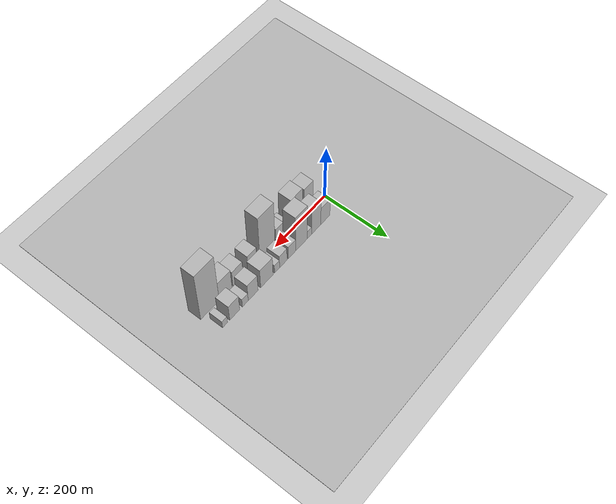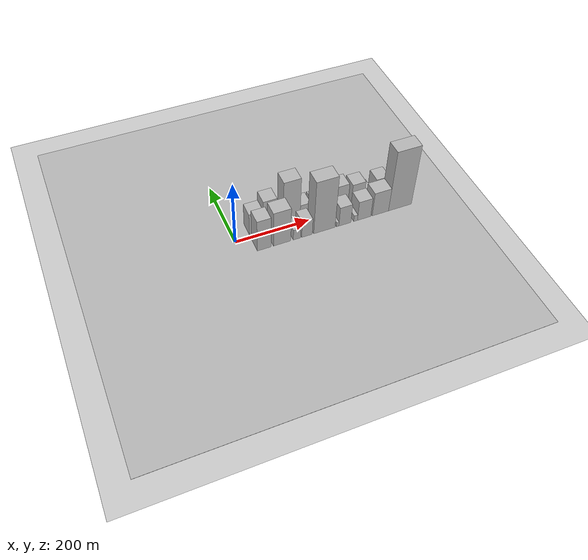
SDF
<?xml version="1.0" encoding="utf-8"?>

<sdf version="1.6">

   <world name="default">

      <gui fullscreen="0">

         <camera name="user_camera">

            <pose>-15 0 4.57585 0 0 0</pose>

            <view_controller>orbit</view_controller>

         </camera>

      </gui>

      <scene>

         <sky>

           <clouds>

             <speed>12</speed>

           </clouds>

         </sky>

         <ambient>0.4 0.4 0.4 1</ambient>

         <background>0.7 0.7 0.7 1</background>

         <shadows>1</shadows>

      </scene>

      <gravity>0 0 -9.8066</gravity>

      <magnetic_field>6e-06 2.3e-05 -4.2e-05</magnetic_field>

      <physics default="0" name="default_physics" type="ode">

         <ode>

            <solver>

               <type>quick</type>

               <iters>10</iters>

               <sor>1.0</sor>

               <use_dynamic_moi_rescaling>0</use_dynamic_moi_rescaling>

            </solver>

            <constraints>

               <cfm>0</cfm>

               <erp>0.2</erp>

               <contact_max_correcting_vel>100</contact_max_correcting_vel>

               <contact_surface_layer>0.001</contact_surface_layer>

            </constraints>

         </ode>

         <max_step_size>0.004</max_step_size>

         <real_time_factor>1</real_time_factor>

         <real_time_update_rate>250</real_time_update_rate>

      </physics>

      <light name="sun" type="directional">

         <cast_shadows>1</cast_shadows>

         <pose>0 0 10 0 0 0</pose>

         <diffuse>0.8 0.8 0.8 1</diffuse>

         <specular>0.2 0.2 0.2 1</specular>

         <attenuation>

            <range>1000</range>

            <constant>0.9</constant>

            <linear>0.01</linear>

            <quadratic>0.001</quadratic>

         </attenuation>

         <direction>-0.5 0.1 -0.9</direction>

      </light>

      <include>

         <name>ground_plane_1</name>

         <uri>model://HANNAS_ground_plane</uri>

         <pose>0 0 0  0 0 0</pose>

      </include>

      <include>

         <name>ground_plane_2</name>

         <uri>model://HANNAS_ground_plane</uri>

         <pose>100 0 0  0 0 0</pose>

      </include>

      <model name="building_1">

         <static>1</static>

         <pose frame="">58.9112 27.5000 0 0.000000 0.000000 1.570796</pose>

         <link name="link">

            <pose frame="">0 0 37.50 0 0 0</pose>

            <collision name="collision">

               <geometry>

                  <box>

                     <size>40.0000 37.8224 75.0000</size>

                  </box>

               </geometry>

               <max_contacts>10</max_contacts>

               <surface>

                  <contact>

                     <ode/>

                  </contact>

                  <bounce/>

                  <friction>

                     <torsional>

                        <ode/>

                     </torsional>

                     <ode/>

                  </friction>

               </surface>

            </collision>

            <visual name="visual">

               <cast_shadows>0</cast_shadows>

               <geometry>

                  <box>

                     <size>40.0000 37.8224 75.0000</size>

                  </box>

               </geometry>

               <material>

                  <script>

                     <uri>model://HANNAS_wall/materials/scripts</uri>

                     <uri>model://HANNAS_wall/materials/textures</uri>

                     <name>vrc/HANNAS_wall</name>

                  </script>

               </material>

            </visual>

            <self_collide>0</self_collide>

            <enable_wind>0</enable_wind>

            <kinematic>0</kinematic>

         </link>

      </model>

      <model name="building_2">

         <static>1</static>

         <pose frame="">96.0253 27.5000 0 0.000000 0.000000 1.570796</pose>

         <link name="link">

            <pose frame="">0 0 52.50 0 0 0</pose>

            <collision name="collision">

               <geometry>

                  <box>

                     <size>40.0000 36.4057 105.0000</size>

                  </box>

               </geometry>

               <max_contacts>10</max_contacts>

               <surface>

                  <contact>

                     <ode/>

                  </contact>

                  <bounce/>

                  <friction>

                     <torsional>

                        <ode/>

                     </torsional>

                     <ode/>

                  </friction>

               </surface>

            </collision>

            <visual name="visual">

               <cast_shadows>0</cast_shadows>

               <geometry>

                  <box>

                     <size>40.0000 36.4057 105.0000</size>

                  </box>

               </geometry>

               <material>

                  <script>

                     <uri>model://HANNAS_wall/materials/scripts</uri>

                     <uri>model://HANNAS_wall/materials/textures</uri>

                     <name>vrc/HANNAS_wall</name>

                  </script>

               </material>

            </visual>

            <self_collide>0</self_collide>

            <enable_wind>0</enable_wind>

            <kinematic>0</kinematic>

         </link>

      </model>

      <model name="building_3">

         <static>1</static>

         <pose frame="">122.9657 27.5000 0 0.000000 0.000000 1.570796</pose>

         <link name="link">

            <pose frame="">0 0 16.50 0 0 0</pose>

            <collision name="collision">

               <geometry>

                  <box>

                     <size>40.0000 17.4751 33.0000</size>

                  </box>

               </geometry>

               <max_contacts>10</max_contacts>

               <surface>

                  <contact>

                     <ode/>

                  </contact>

                  <bounce/>

                  <friction>

                     <torsional>

                        <ode/>

                     </torsional>

                     <ode/>

                  </friction>

               </surface>

            </collision>

            <visual name="visual">

               <cast_shadows>0</cast_shadows>

               <geometry>

                  <box>

                     <size>40.0000 17.4751 33.0000</size>

                  </box>

               </geometry>

               <material>

                  <script>

                     <uri>model://HANNAS_wall/materials/scripts</uri>

                     <uri>model://HANNAS_wall/materials/textures</uri>

                     <name>vrc/HANNAS_wall</name>

                  </script>

               </material>

            </visual>

            <self_collide>0</self_collide>

            <enable_wind>0</enable_wind>

            <kinematic>0</kinematic>

         </link>

      </model>

      <model name="building_4">

         <static>1</static>

         <pose frame="">154.6635 27.5000 0 0.000000 0.000000 1.570796</pose>

         <link name="link">

            <pose frame="">0 0 75.00 0 0 0</pose>

            <collision name="collision">

               <geometry>

                  <box>

                     <size>40.0000 45.9206 150.0000</size>

                  </box>

               </geometry>

               <max_contacts>10</max_contacts>

               <surface>

                  <contact>

                     <ode/>

                  </contact>

                  <bounce/>

                  <friction>

                     <torsional>

                        <ode/>

                     </torsional>

                     <ode/>

                  </friction>

               </surface>

            </collision>

            <visual name="visual">

               <cast_shadows>0</cast_shadows>

               <geometry>

                  <box>

                     <size>40.0000 45.9206 150.0000</size>

                  </box>

               </geometry>

               <material>

                  <script>

                     <uri>model://HANNAS_wall/materials/scripts</uri>

                     <uri>model://HANNAS_wall/materials/textures</uri>

                     <name>vrc/HANNAS_wall</name>

                  </script>

               </material>

            </visual>

            <self_collide>0</self_collide>

            <enable_wind>0</enable_wind>

            <kinematic>0</kinematic>

         </link>

      </model>

      <model name="building_5">

         <static>1</static>

         <pose frame="">191.8760 27.5000 0 0.000000 0.000000 1.570796</pose>

         <link name="link">

            <pose frame="">0 0 27.00 0 0 0</pose>

            <collision name="collision">

               <geometry>

                  <box>

                     <size>40.0000 28.5044 54.0000</size>

                  </box>

               </geometry>

               <max_contacts>10</max_contacts>

               <surface>

                  <contact>

                     <ode/>

                  </contact>

                  <bounce/>

                  <friction>

                     <torsional>

                        <ode/>

                     </torsional>

                     <ode/>

                  </friction>

               </surface>

            </collision>

            <visual name="visual">

               <cast_shadows>0</cast_shadows>

               <geometry>

                  <box>

                     <size>40.0000 28.5044 54.0000</size>

                  </box>

               </geometry>

               <material>

                  <script>

                     <uri>model://HANNAS_wall/materials/scripts</uri>

                     <uri>model://HANNAS_wall/materials/textures</uri>

                     <name>vrc/HANNAS_wall</name>

                  </script>

               </material>

            </visual>

            <self_collide>0</self_collide>

            <enable_wind>0</enable_wind>

            <kinematic>0</kinematic>

         </link>

      </model>

      <model name="building_6">

         <static>1</static>

         <pose frame="">225.6103 27.5000 0 0.000000 0.000000 1.570796</pose>

         <link name="link">

            <pose frame="">0 0 27.00 0 0 0</pose>

            <collision name="collision">

               <geometry>

                  <box>

                     <size>40.0000 28.9641 54.0000</size>

                  </box>

               </geometry>

               <max_contacts>10</max_contacts>

               <surface>

                  <contact>

                     <ode/>

                  </contact>

                  <bounce/>

                  <friction>

                     <torsional>

                        <ode/>

                     </torsional>

                     <ode/>

                  </friction>

               </surface>

            </collision>

            <visual name="visual">

               <cast_shadows>0</cast_shadows>

               <geometry>

                  <box>

                     <size>40.0000 28.9641 54.0000</size>

                  </box>

               </geometry>

               <material>

                  <script>

                     <uri>model://HANNAS_wall/materials/scripts</uri>

                     <uri>model://HANNAS_wall/materials/textures</uri>

                     <name>vrc/HANNAS_wall</name>

                  </script>

               </material>

            </visual>

            <self_collide>0</self_collide>

            <enable_wind>0</enable_wind>

            <kinematic>0</kinematic>

         </link>

      </model>

      <model name="building_7">

         <static>1</static>

         <pose frame="">249.6914 27.5000 0 0.000000 0.000000 1.570796</pose>

         <link name="link">

            <pose frame="">0 0 18.00 0 0 0</pose>

            <collision name="collision">

               <geometry>

                  <box>

                     <size>40.0000 19.1980 36.0000</size>

                  </box>

               </geometry>

               <max_contacts>10</max_contacts>

               <surface>

                  <contact>

                     <ode/>

                  </contact>

                  <bounce/>

                  <friction>

                     <torsional>

                        <ode/>

                     </torsional>

                     <ode/>

                  </friction>

               </surface>

            </collision>

            <visual name="visual">

               <cast_shadows>0</cast_shadows>

               <geometry>

                  <box>

                     <size>40.0000 19.1980 36.0000</size>

                  </box>

               </geometry>

               <material>

                  <script>

                     <uri>model://HANNAS_wall/materials/scripts</uri>

                     <uri>model://HANNAS_wall/materials/textures</uri>

                     <name>vrc/HANNAS_wall</name>

                  </script>

               </material>

            </visual>

            <self_collide>0</self_collide>

            <enable_wind>0</enable_wind>

            <kinematic>0</kinematic>

         </link>

      </model>

      <model name="building_8">

         <static>1</static>

         <pose frame="">288.7685 27.5000 0 0.000000 0.000000 1.570796</pose>

         <link name="link">

            <pose frame="">0 0 40.50 0 0 0</pose>

            <collision name="collision">

               <geometry>

                  <box>

                     <size>40.0000 46.9563 81.0000</size>

                  </box>

               </geometry>

               <max_contacts>10</max_contacts>

               <surface>

                  <contact>

                     <ode/>

                  </contact>

                  <bounce/>

                  <friction>

                     <torsional>

                        <ode/>

                     </torsional>

                     <ode/>

                  </friction>

               </surface>

            </collision>

            <visual name="visual">

               <cast_shadows>0</cast_shadows>

               <geometry>

                  <box>

                     <size>40.0000 46.9563 81.0000</size>

                  </box>

               </geometry>

               <material>

                  <script>

                     <uri>model://HANNAS_wall/materials/scripts</uri>

                     <uri>model://HANNAS_wall/materials/textures</uri>

                     <name>vrc/HANNAS_wall</name>

                  </script>

               </material>

            </visual>

            <self_collide>0</self_collide>

            <enable_wind>0</enable_wind>

            <kinematic>0</kinematic>

         </link>

      </model>

      <model name="building_9">

         <static>1</static>

         <pose frame="">340.5489 27.5000 0 0.000000 0.000000 1.570796</pose>

         <link name="link">

            <pose frame="">0 0 36.00 0 0 0</pose>

            <collision name="collision">

               <geometry>

                  <box>

                     <size>40.0000 36.6044 72.0000</size>

                  </box>

               </geometry>

               <max_contacts>10</max_contacts>

               <surface>

                  <contact>

                     <ode/>

                  </contact>

                  <bounce/>

                  <friction>

                     <torsional>

                        <ode/>

                     </torsional>

                     <ode/>

                  </friction>

               </surface>

            </collision>

            <visual name="visual">

               <cast_shadows>0</cast_shadows>

               <geometry>

                  <box>

                     <size>40.0000 36.6044 72.0000</size>

                  </box>

               </geometry>

               <material>

                  <script>

                     <uri>model://HANNAS_wall/materials/scripts</uri>

                     <uri>model://HANNAS_wall/materials/textures</uri>

                     <name>vrc/HANNAS_wall</name>

                  </script>

               </material>

            </visual>

            <self_collide>0</self_collide>

            <enable_wind>0</enable_wind>

            <kinematic>0</kinematic>

         </link>

      </model>

      <model name="building_10">

         <static>1</static>

         <pose frame="">369.5838 27.5000 0 0.000000 0.000000 1.570796</pose>

         <link name="link">

            <pose frame="">0 0 18.00 0 0 0</pose>

            <collision name="collision">

               <geometry>

                  <box>

                     <size>40.0000 21.4655 36.0000</size>

                  </box>

               </geometry>

               <max_contacts>10</max_contacts>

               <surface>

                  <contact>

                     <ode/>

                  </contact>

                  <bounce/>

                  <friction>

                     <torsional>

                        <ode/>

                     </torsional>

                     <ode/>

                  </friction>

               </surface>

            </collision>

            <visual name="visual">

               <cast_shadows>0</cast_shadows>

               <geometry>

                  <box>

                     <size>40.0000 21.4655 36.0000</size>

                  </box>

               </geometry>

               <material>

                  <script>

                     <uri>model://HANNAS_wall/materials/scripts</uri>

                     <uri>model://HANNAS_wall/materials/textures</uri>

                     <name>vrc/HANNAS_wall</name>

                  </script>

               </material>

            </visual>

            <self_collide>0</self_collide>

            <enable_wind>0</enable_wind>

            <kinematic>0</kinematic>

         </link>

      </model>

      <model name="building_11">

         <static>1</static>

         <pose frame="">408.5674 27.5000 0 0.000000 0.000000 1.570796</pose>

         <link name="link">

            <pose frame="">0 0 33.00 0 0 0</pose>

            <collision name="collision">

               <geometry>

                  <box>

                     <size>40.0000 36.5016 66.0000</size>

                  </box>

               </geometry>

               <max_contacts>10</max_contacts>

               <surface>

                  <contact>

                     <ode/>

                  </contact>

                  <bounce/>

                  <friction>

                     <torsional>

                        <ode/>

                     </torsional>

                     <ode/>

                  </friction>

               </surface>

            </collision>

            <visual name="visual">

               <cast_shadows>0</cast_shadows>

               <geometry>

                  <box>

                     <size>40.0000 36.5016 66.0000</size>

                  </box>

               </geometry>

               <material>

                  <script>

                     <uri>model://HANNAS_wall/materials/scripts</uri>

                     <uri>model://HANNAS_wall/materials/textures</uri>

                     <name>vrc/HANNAS_wall</name>

                  </script>

               </material>

            </visual>

            <self_collide>0</self_collide>

            <enable_wind>0</enable_wind>

            <kinematic>0</kinematic>

         </link>

      </model>

      <model name="building_12">

         <static>1</static>

         <pose frame="">443.7434 27.5000 0 0.000000 0.000000 1.570796</pose>

         <link name="link">

            <pose frame="">0 0 15.00 0 0 0</pose>

            <collision name="collision">

               <geometry>

                  <box>

                     <size>40.0000 17.8504 30.0000</size>

                  </box>

               </geometry>

               <max_contacts>10</max_contacts>

               <surface>

                  <contact>

                     <ode/>

                  </contact>

                  <bounce/>

                  <friction>

                     <torsional>

                        <ode/>

                     </torsional>

                     <ode/>

                  </friction>

               </surface>

            </collision>

            <visual name="visual">

               <cast_shadows>0</cast_shadows>

               <geometry>

                  <box>

                     <size>40.0000 17.8504 30.0000</size>

                  </box>

               </geometry>

               <material>

                  <script>

                     <uri>model://HANNAS_wall/materials/scripts</uri>

                     <uri>model://HANNAS_wall/materials/textures</uri>

                     <name>vrc/HANNAS_wall</name>

                  </script>

               </material>

            </visual>

            <self_collide>0</self_collide>

            <enable_wind>0</enable_wind>

            <kinematic>0</kinematic>

         </link>

      </model>

      <model name="building_13">

         <static>1</static>

         <pose frame="">58.2662 -27.5000 0 0.000000 0.000000 1.570796</pose>

         <link name="link">

            <pose frame="">0 0 52.50 0 0 0</pose>

            <collision name="collision">

               <geometry>

                  <box>

                     <size>40.0000 36.5324 105.0000</size>

                  </box>

               </geometry>

               <max_contacts>10</max_contacts>

               <surface>

                  <contact>

                     <ode/>

                  </contact>

                  <bounce/>

                  <friction>

                     <torsional>

                        <ode/>

                     </torsional>

                     <ode/>

                  </friction>

               </surface>

            </collision>

            <visual name="visual">

               <cast_shadows>0</cast_shadows>

               <geometry>

                  <box>

                     <size>40.0000 36.5324 105.0000</size>

                  </box>

               </geometry>

               <material>

                  <script>

                     <uri>model://HANNAS_wall/materials/scripts</uri>

                     <uri>model://HANNAS_wall/materials/textures</uri>

                     <name>vrc/HANNAS_wall</name>

                  </script>

               </material>

            </visual>

            <self_collide>0</self_collide>

            <enable_wind>0</enable_wind>

            <kinematic>0</kinematic>

         </link>

      </model>

      <model name="building_14">

         <static>1</static>

         <pose frame="">105.6977 -27.5000 0 0.000000 0.000000 1.570796</pose>

         <link name="link">

            <pose frame="">0 0 58.50 0 0 0</pose>

            <collision name="collision">

               <geometry>

                  <box>

                     <size>40.0000 46.3305 117.0000</size>

                  </box>

               </geometry>

               <max_contacts>10</max_contacts>

               <surface>

                  <contact>

                     <ode/>

                  </contact>

                  <bounce/>

                  <friction>

                     <torsional>

                        <ode/>

                     </torsional>

                     <ode/>

                  </friction>

               </surface>

            </collision>

            <visual name="visual">

               <cast_shadows>0</cast_shadows>

               <geometry>

                  <box>

                     <size>40.0000 46.3305 117.0000</size>

                  </box>

               </geometry>

               <material>

                  <script>

                     <uri>model://HANNAS_wall/materials/scripts</uri>

                     <uri>model://HANNAS_wall/materials/textures</uri>

                     <name>vrc/HANNAS_wall</name>

                  </script>

               </material>

            </visual>

            <self_collide>0</self_collide>

            <enable_wind>0</enable_wind>

            <kinematic>0</kinematic>

         </link>

      </model>

      <model name="building_15">

         <static>1</static>

         <pose frame="">145.7606 -27.5000 0 0.000000 0.000000 1.570796</pose>

         <link name="link">

            <pose frame="">0 0 18.00 0 0 0</pose>

            <collision name="collision">

               <geometry>

                  <box>

                     <size>40.0000 19.7955 36.0000</size>

                  </box>

               </geometry>

               <max_contacts>10</max_contacts>

               <surface>

                  <contact>

                     <ode/>

                  </contact>

                  <bounce/>

                  <friction>

                     <torsional>

                        <ode/>

                     </torsional>

                     <ode/>

                  </friction>

               </surface>

            </collision>

            <visual name="visual">

               <cast_shadows>0</cast_shadows>

               <geometry>

                  <box>

                     <size>40.0000 19.7955 36.0000</size>

                  </box>

               </geometry>

               <material>

                  <script>

                     <uri>model://HANNAS_wall/materials/scripts</uri>

                     <uri>model://HANNAS_wall/materials/textures</uri>

                     <name>vrc/HANNAS_wall</name>

                  </script>

               </material>

            </visual>

            <self_collide>0</self_collide>

            <enable_wind>0</enable_wind>

            <kinematic>0</kinematic>

         </link>

      </model>

      <model name="building_16">

         <static>1</static>

         <pose frame="">173.1249 -27.5000 0 0.000000 0.000000 1.570796</pose>

         <link name="link">

            <pose frame="">0 0 28.50 0 0 0</pose>

            <collision name="collision">

               <geometry>

                  <box>

                     <size>40.0000 28.9332 57.0000</size>

                  </box>

               </geometry>

               <max_contacts>10</max_contacts>

               <surface>

                  <contact>

                     <ode/>

                  </contact>

                  <bounce/>

                  <friction>

                     <torsional>

                        <ode/>

                     </torsional>

                     <ode/>

                  </friction>

               </surface>

            </collision>

            <visual name="visual">

               <cast_shadows>0</cast_shadows>

               <geometry>

                  <box>

                     <size>40.0000 28.9332 57.0000</size>

                  </box>

               </geometry>

               <material>

                  <script>

                     <uri>model://HANNAS_wall/materials/scripts</uri>

                     <uri>model://HANNAS_wall/materials/textures</uri>

                     <name>vrc/HANNAS_wall</name>

                  </script>

               </material>

            </visual>

            <self_collide>0</self_collide>

            <enable_wind>0</enable_wind>

            <kinematic>0</kinematic>

         </link>

      </model>

      <model name="building_17">

         <static>1</static>

         <pose frame="">221.0845 -27.5000 0 0.000000 0.000000 1.570796</pose>

         <link name="link">

            <pose frame="">0 0 90.00 0 0 0</pose>

            <collision name="collision">

               <geometry>

                  <box>

                     <size>40.0000 58.9860 180.0000</size>

                  </box>

               </geometry>

               <max_contacts>10</max_contacts>

               <surface>

                  <contact>

                     <ode/>

                  </contact>

                  <bounce/>

                  <friction>

                     <torsional>

                        <ode/>

                     </torsional>

                     <ode/>

                  </friction>

               </surface>

            </collision>

            <visual name="visual">

               <cast_shadows>0</cast_shadows>

               <geometry>

                  <box>

                     <size>40.0000 58.9860 180.0000</size>

                  </box>

               </geometry>

               <material>

                  <script>

                     <uri>model://HANNAS_wall/materials/scripts</uri>

                     <uri>model://HANNAS_wall/materials/textures</uri>

                     <name>vrc/HANNAS_wall</name>

                  </script>

               </material>

            </visual>

            <self_collide>0</self_collide>

            <enable_wind>0</enable_wind>

            <kinematic>0</kinematic>

         </link>

      </model>

      <model name="building_18">

         <static>1</static>

         <pose frame="">257.8445 -27.5000 0 0.000000 0.000000 1.570796</pose>

         <link name="link">

            <pose frame="">0 0 7.50 0 0 0</pose>

            <collision name="collision">

               <geometry>

                  <box>

                     <size>40.0000 6.5340 15.0000</size>

                  </box>

               </geometry>

               <max_contacts>10</max_contacts>

               <surface>

                  <contact>

                     <ode/>

                  </contact>

                  <bounce/>

                  <friction>

                     <torsional>

                        <ode/>

                     </torsional>

                     <ode/>

                  </friction>

               </surface>

            </collision>

            <visual name="visual">

               <cast_shadows>0</cast_shadows>

               <geometry>

                  <box>

                     <size>40.0000 6.5340 15.0000</size>

                  </box>

               </geometry>

               <material>

                  <script>

                     <uri>model://HANNAS_wall/materials/scripts</uri>

                     <uri>model://HANNAS_wall/materials/textures</uri>

                     <name>vrc/HANNAS_wall</name>

                  </script>

               </material>

            </visual>

            <self_collide>0</self_collide>

            <enable_wind>0</enable_wind>

            <kinematic>0</kinematic>

         </link>

      </model>

      <model name="building_19">

         <static>1</static>

         <pose frame="">278.0468 -27.5000 0 0.000000 0.000000 1.570796</pose>

         <link name="link">

            <pose frame="">0 0 33.00 0 0 0</pose>

            <collision name="collision">

               <geometry>

                  <box>

                     <size>40.0000 33.8707 66.0000</size>

                  </box>

               </geometry>

               <max_contacts>10</max_contacts>

               <surface>

                  <contact>

                     <ode/>

                  </contact>

                  <bounce/>

                  <friction>

                     <torsional>

                        <ode/>

                     </torsional>

                     <ode/>

                  </friction>

               </surface>

            </collision>

            <visual name="visual">

               <cast_shadows>0</cast_shadows>

               <geometry>

                  <box>

                     <size>40.0000 33.8707 66.0000</size>

                  </box>

               </geometry>

               <material>

                  <script>

                     <uri>model://HANNAS_wall/materials/scripts</uri>

                     <uri>model://HANNAS_wall/materials/textures</uri>

                     <name>vrc/HANNAS_wall</name>

                  </script>

               </material>

            </visual>

            <self_collide>0</self_collide>

            <enable_wind>0</enable_wind>

            <kinematic>0</kinematic>

         </link>

      </model>

      <model name="building_20">

         <static>1</static>

         <pose frame="">308.2123 -27.5000 0 0.000000 0.000000 1.570796</pose>

         <link name="link">

            <pose frame="">0 0 10.50 0 0 0</pose>

            <collision name="collision">

               <geometry>

                  <box>

                     <size>40.0000 10.4602 21.0000</size>

                  </box>

               </geometry>

               <max_contacts>10</max_contacts>

               <surface>

                  <contact>

                     <ode/>

                  </contact>

                  <bounce/>

                  <friction>

                     <torsional>

                        <ode/>

                     </torsional>

                     <ode/>

                  </friction>

               </surface>

            </collision>

            <visual name="visual">

               <cast_shadows>0</cast_shadows>

               <geometry>

                  <box>

                     <size>40.0000 10.4602 21.0000</size>

                  </box>

               </geometry>

               <material>

                  <script>

                     <uri>model://HANNAS_wall/materials/scripts</uri>

                     <uri>model://HANNAS_wall/materials/textures</uri>

                     <name>vrc/HANNAS_wall</name>

                  </script>

               </material>

            </visual>

            <self_collide>0</self_collide>

            <enable_wind>0</enable_wind>

            <kinematic>0</kinematic>

         </link>

      </model>

      <model name="building_21">

         <static>1</static>

         <pose frame="">332.4235 -27.5000 0 0.000000 0.000000 1.570796</pose>

         <link name="link">

            <pose frame="">0 0 33.00 0 0 0</pose>

            <collision name="collision">

               <geometry>

                  <box>

                     <size>40.0000 37.9622 66.0000</size>

                  </box>

               </geometry>

               <max_contacts>10</max_contacts>

               <surface>

                  <contact>

                     <ode/>

                  </contact>

                  <bounce/>

                  <friction>

                     <torsional>

                        <ode/>

                     </torsional>

                     <ode/>

                  </friction>

               </surface>

            </collision>

            <visual name="visual">

               <cast_shadows>0</cast_shadows>

               <geometry>

                  <box>

                     <size>40.0000 37.9622 66.0000</size>

                  </box>

               </geometry>

               <material>

                  <script>

                     <uri>model://HANNAS_wall/materials/scripts</uri>

                     <uri>model://HANNAS_wall/materials/textures</uri>

                     <name>vrc/HANNAS_wall</name>

                  </script>

               </material>

            </visual>

            <self_collide>0</self_collide>

            <enable_wind>0</enable_wind>

            <kinematic>0</kinematic>

         </link>

      </model>

      <model name="building_22">

         <static>1</static>

         <pose frame="">378.8944 -27.5000 0 0.000000 0.000000 1.570796</pose>

         <link name="link">

            <pose frame="">0 0 40.50 0 0 0</pose>

            <collision name="collision">

               <geometry>

                  <box>

                     <size>40.0000 46.9795 81.0000</size>

                  </box>

               </geometry>

               <max_contacts>10</max_contacts>

               <surface>

                  <contact>

                     <ode/>

                  </contact>

                  <bounce/>

                  <friction>

                     <torsional>

                        <ode/>

                     </torsional>

                     <ode/>

                  </friction>

               </surface>

            </collision>

            <visual name="visual">

               <cast_shadows>0</cast_shadows>

               <geometry>

                  <box>

                     <size>40.0000 46.9795 81.0000</size>

                  </box>

               </geometry>

               <material>

                  <script>

                     <uri>model://HANNAS_wall/materials/scripts</uri>

                     <uri>model://HANNAS_wall/materials/textures</uri>

                     <name>vrc/HANNAS_wall</name>

                  </script>

               </material>

            </visual>

            <self_collide>0</self_collide>

            <enable_wind>0</enable_wind>

            <kinematic>0</kinematic>

         </link>

      </model>

      <model name="building_23">

         <static>1</static>

         <pose frame="">435.7940 -27.5000 0 0.000000 0.000000 1.570796</pose>

         <link name="link">

            <pose frame="">0 0 102.00 0 0 0</pose>

            <collision name="collision">

               <geometry>

                  <box>

                     <size>40.0000 66.8198 204.0000</size>

                  </box>

               </geometry>

               <max_contacts>10</max_contacts>

               <surface>

                  <contact>

                     <ode/>

                  </contact>

                  <bounce/>

                  <friction>

                     <torsional>

                        <ode/>

                     </torsional>

                     <ode/>

                  </friction>

               </surface>

            </collision>

            <visual name="visual">

               <cast_shadows>0</cast_shadows>

               <geometry>

                  <box>

                     <size>40.0000 66.8198 204.0000</size>

                  </box>

               </geometry>

               <material>

                  <script>

                     <uri>model://HANNAS_wall/materials/scripts</uri>

                     <uri>model://HANNAS_wall/materials/textures</uri>

                     <name>vrc/HANNAS_wall</name>

                  </script>

               </material>

            </visual>

            <self_collide>0</self_collide>

            <enable_wind>0</enable_wind>

            <kinematic>0</kinematic>

         </link>

      </model>

   </world>

</sdf>

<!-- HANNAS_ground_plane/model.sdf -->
<sdf version="1.4">
<model name="HANNAS_ground_plane">
  <static>true</static>
    <link name="link">
      <collision name="collision">
        <geometry>
          <plane>
            <normal>0 0 1</normal>
            <size>1000 1000</size>
          </plane>
        </geometry>
        <surface>
          <friction>
            <ode>
              <mu>100</mu>
              <mu2>50</mu2>
            </ode>
          </friction>
        </surface>
      </collision>
      <visual name="visual">
        <cast_shadows>false</cast_shadows>
        <geometry>
          <plane>
            <normal>0 0 1</normal>
            <size>1000 1000</size>
          </plane>
        </geometry>
        <material>
          <script>
            <uri>model://HANNAS_ground_plane/materials/scripts/HANNAS_ground_plane.material</uri>
	    <uri>model://HANNAS_ground_plane/materials/textures</uri>
            <name>HANNASGroundPlane/Image</name>
          </script>
        </material>
      </visual>
    </link>
  </model>
</sdf>
